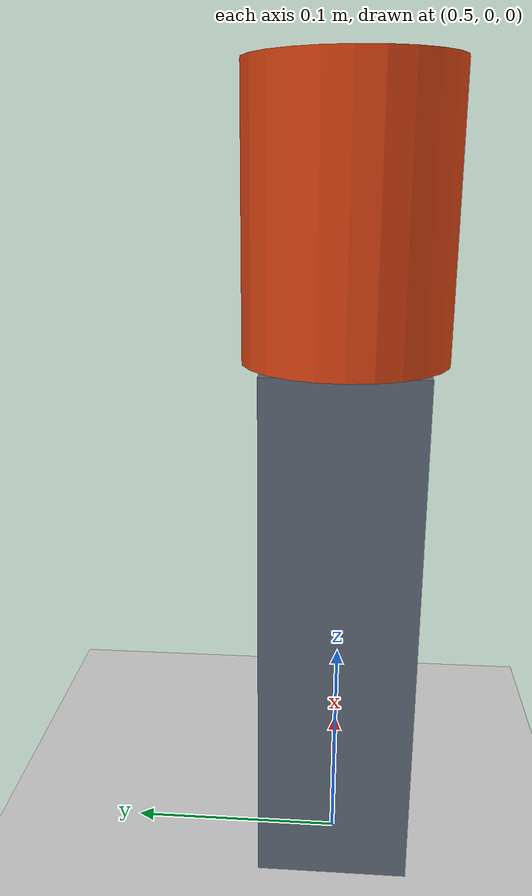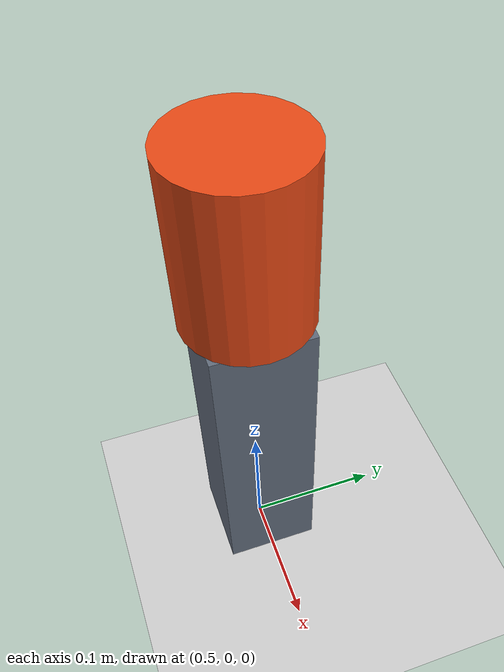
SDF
<?xml version="1.0"?>
<sdf version="1.6">
  <world name="default">
    <gravity>0 0 -9.81</gravity>

    <plugin name="gazebo_ros_state" filename="libgazebo_ros_state.so">
      <ros>
        <namespace>/gazebo</namespace>
      </ros>
      <update_rate>100.0</update_rate>
    </plugin>

    <physics name="ode_physics" default="true" type="ode">
      <max_step_size>0.001</max_step_size>
      <real_time_update_rate>1000</real_time_update_rate>
      <real_time_factor>1.0</real_time_factor>
      <ode>
        <solver>
          <type>quick</type>
          <iters>100</iters>
          <sor>1.3</sor>
        </solver>
        <constraints>
          <cfm>0.0</cfm>
          <erp>0.2</erp>
          <contact_max_correcting_vel>0.1</contact_max_correcting_vel>
          <contact_surface_layer>0.001</contact_surface_layer>
        </constraints>
      </ode>
    </physics>

    <include>
      <uri>model://ground_plane</uri>
    </include>
    <include>
      <uri>model://sun</uri>
    </include>

    <model name="grasp_pedestal">
      <static>true</static>
      <pose>0.5 0 0.12 0 0 0</pose>
      <link name="pedestal_link">
        <collision name="pedestal_collision">
          <geometry>
            <box><size>0.07 0.07 0.24</size></box>
          </geometry>
          <surface>
            <friction>
              <ode><mu>1.0</mu><mu2>1.0</mu2></ode>
            </friction>
            <contact>
              <ode><kp>1000000</kp><kd>100</kd><max_vel>0.05</max_vel><min_depth>0.001</min_depth></ode>
            </contact>
          </surface>
        </collision>
        <visual name="pedestal_visual">
          <geometry>
            <box><size>0.07 0.07 0.24</size></box>
          </geometry>
          <material>
            <ambient>0.30 0.32 0.36 1</ambient>
            <diffuse>0.38 0.42 0.48 1</diffuse>
          </material>
        </visual>
      </link>
    </model>

    <model name="grasp_cylinder">
      <!--
        Natural demonstration mode: the object is visibly present on the
        fixture from simulation startup and is never teleported by reset.
      -->
      <pose>0.5 0 0.300 0 0 0</pose>
      <link name="cylinder_link">
        <inertial>
          <mass>0.10</mass>
          <inertia>
            <ixx>0.0001706</ixx>
            <iyy>0.0001706</iyy>
            <izz>0.0001013</izz>
            <ixy>0</ixy><ixz>0</ixz><iyz>0</iyz>
          </inertia>
        </inertial>
        <velocity_decay>
          <linear>0.01</linear>
          <angular>0.01</angular>
        </velocity_decay>
        <collision name="cylinder_collision">
          <geometry>
            <cylinder><radius>0.045</radius><length>0.12</length></cylinder>
          </geometry>
          <max_contacts>30</max_contacts>
          <surface>
            <friction>
              <ode>
                <mu>1.4</mu><mu2>1.4</mu2>
                <slip1>0.0</slip1><slip2>0.0</slip2>
              </ode>
            </friction>
            <contact>
              <ode><kp>1000000</kp><kd>100</kd><max_vel>0.05</max_vel><min_depth>0.001</min_depth></ode>
            </contact>
          </surface>
        </collision>
        <visual name="cylinder_visual">
          <geometry>
            <cylinder><radius>0.045</radius><length>0.12</length></cylinder>
          </geometry>
          <material>
            <ambient>0.70 0.18 0.06 1</ambient>
            <diffuse>0.90 0.28 0.08 1</diffuse>
            <specular>0.30 0.30 0.30 1</specular>
          </material>
        </visual>
      </link>
    </model>
  </world>
</sdf>
